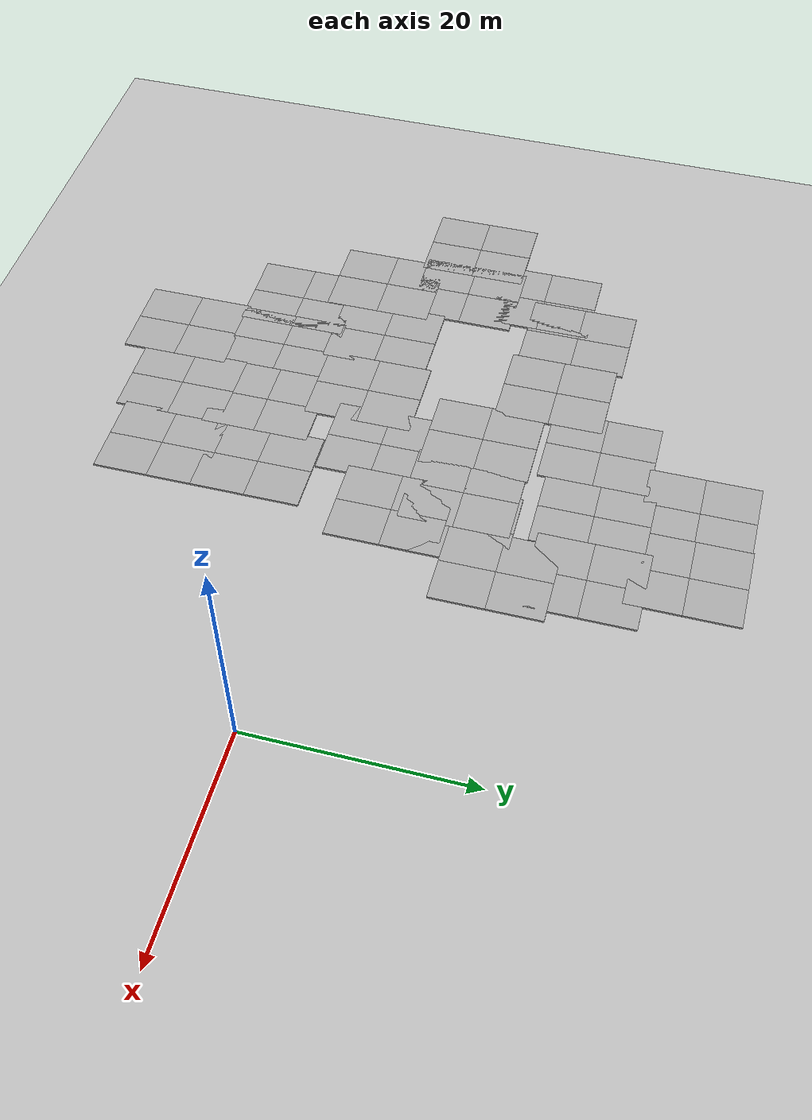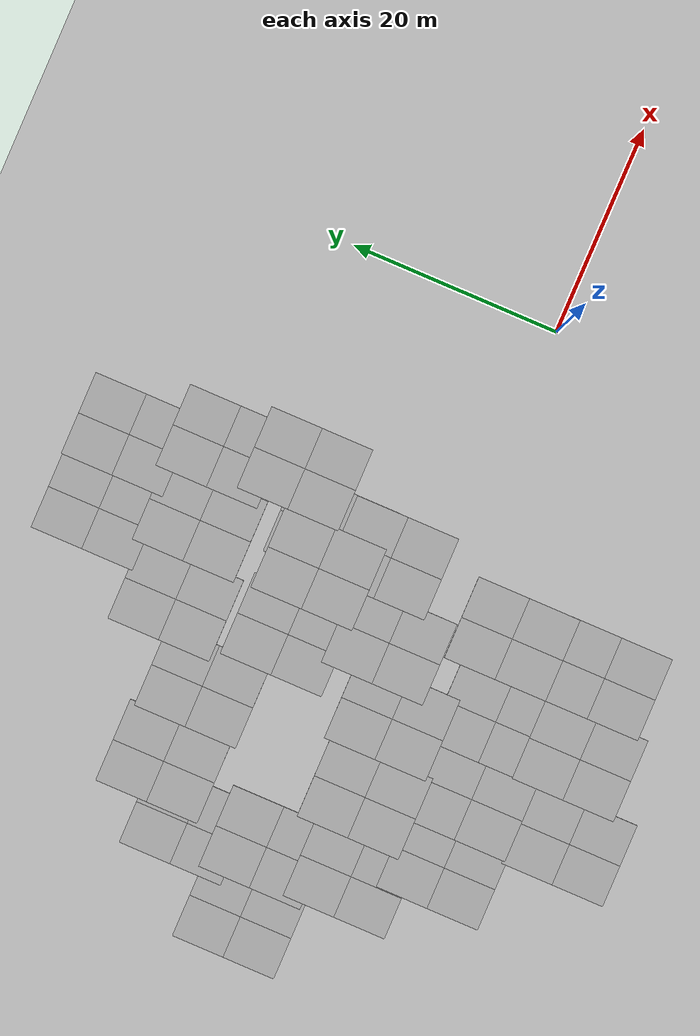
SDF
<sdf version="1.6">
 <world name="default">
  <model name="ground_plane">
   <static>1</static>
   <link name="link">
    <collision name="collision">
     <geometry><plane><normal>0 0 1</normal><size>100 100</size></plane></geometry>
     <surface><friction><ode><mu>100</mu><mu2>50</mu2></ode></friction></surface>
    </collision>
    <visual name="visual">
     <cast_shadows>0</cast_shadows>
     <geometry><plane><normal>0 0 1</normal><size>100 100</size></plane></geometry>
     <material>
      <script><uri>file://media/materials/scripts/gazebo.material</uri><name>Gazebo/Grey</name></script>
     </material>
    </visual>
   </link>
  </model>
  <model name="mud_box_clone_8_clone_12">
   <static>1</static>
   <link name="link">
    <collision name="collision"><geometry><box><size>8 10 0.2</size></box></geometry></collision>
    <visual name="visual_1">
     <pose>-2 2.5 0 0 -0 0</pose>
     <cast_shadows>0</cast_shadows>
     <geometry><box><size>4 5 0.2</size></box></geometry>
     <material>
      <script>
       <uri>model://mud_box/materials/scripts</uri>
       <uri>model://mud_box/materials/textures</uri>
       <name>vrc/mud</name>
      </script>
     </material>
    </visual>
    <visual name="visual_2">
     <pose>2 2.5 0 0 -0 0</pose>
     <cast_shadows>0</cast_shadows>
     <geometry><box><size>4 5 0.2</size></box></geometry>
     <material>
      <script>
       <uri>model://mud_box/materials/scripts</uri>
       <uri>model://mud_box/materials/textures</uri>
       <name>vrc/mud</name>
      </script>
     </material>
    </visual>
    <visual name="visual_3">
     <pose>2 -2.5 0 0 -0 0</pose>
     <cast_shadows>0</cast_shadows>
     <geometry><box><size>4 5 0.2</size></box></geometry>
     <material>
      <script>
       <uri>model://mud_box/materials/scripts</uri>
       <uri>model://mud_box/materials/textures</uri>
       <name>vrc/mud</name>
      </script>
     </material>
    </visual>
    <visual name="visual_4">
     <pose>-2 -2.5 0 0 -0 0</pose>
     <cast_shadows>0</cast_shadows>
     <geometry><box><size>4 5 0.2</size></box></geometry>
     <material>
      <script>
       <uri>model://mud_box/materials/scripts</uri>
       <uri>model://mud_box/materials/textures</uri>
       <name>vrc/mud</name>
      </script>
     </material>
    </visual>
   </link>
   <pose>-20.3945 16.0961 0 0 -0 0</pose>
  </model>
  <model name="mud_box_clone_8_clone_14">
   <static>1</static>
   <link name="link">
    <collision name="collision"><geometry><box><size>8 10 0.2</size></box></geometry></collision>
    <visual name="visual_1">
     <pose>-2 2.5 0 0 -0 0</pose>
     <cast_shadows>0</cast_shadows>
     <geometry><box><size>4 5 0.2</size></box></geometry>
     <material>
      <script>
       <uri>model://mud_box/materials/scripts</uri>
       <uri>model://mud_box/materials/textures</uri>
       <name>vrc/mud</name>
      </script>
     </material>
    </visual>
    <visual name="visual_2">
     <pose>2 2.5 0 0 -0 0</pose>
     <cast_shadows>0</cast_shadows>
     <geometry><box><size>4 5 0.2</size></box></geometry>
     <material>
      <script>
       <uri>model://mud_box/materials/scripts</uri>
       <uri>model://mud_box/materials/textures</uri>
       <name>vrc/mud</name>
      </script>
     </material>
    </visual>
    <visual name="visual_3">
     <pose>2 -2.5 0 0 -0 0</pose>
     <cast_shadows>0</cast_shadows>
     <geometry><box><size>4 5 0.2</size></box></geometry>
     <material>
      <script>
       <uri>model://mud_box/materials/scripts</uri>
       <uri>model://mud_box/materials/textures</uri>
       <name>vrc/mud</name>
      </script>
     </material>
    </visual>
    <visual name="visual_4">
     <pose>-2 -2.5 0 0 -0 0</pose>
     <cast_shadows>0</cast_shadows>
     <geometry><box><size>4 5 0.2</size></box></geometry>
     <material>
      <script>
       <uri>model://mud_box/materials/scripts</uri>
       <uri>model://mud_box/materials/textures</uri>
       <name>vrc/mud</name>
      </script>
     </material>
    </visual>
   </link>
   <pose>-21.4448 23.678 0 0 -0 0</pose>
  </model>
  <model name="mud_box_clone_8_clone_15">
   <static>1</static>
   <link name="link">
    <collision name="collision"><geometry><box><size>8 10 0.2</size></box></geometry></collision>
    <visual name="visual_1">
     <pose>-2 2.5 0 0 -0 0</pose>
     <cast_shadows>0</cast_shadows>
     <geometry><box><size>4 5 0.2</size></box></geometry>
     <material>
      <script>
       <uri>model://mud_box/materials/scripts</uri>
       <uri>model://mud_box/materials/textures</uri>
       <name>vrc/mud</name>
      </script>
     </material>
    </visual>
    <visual name="visual_2">
     <pose>2 2.5 0 0 -0 0</pose>
     <cast_shadows>0</cast_shadows>
     <geometry><box><size>4 5 0.2</size></box></geometry>
     <material>
      <script>
       <uri>model://mud_box/materials/scripts</uri>
       <uri>model://mud_box/materials/textures</uri>
       <name>vrc/mud</name>
      </script>
     </material>
    </visual>
    <visual name="visual_3">
     <pose>2 -2.5 0 0 -0 0</pose>
     <cast_shadows>0</cast_shadows>
     <geometry><box><size>4 5 0.2</size></box></geometry>
     <material>
      <script>
       <uri>model://mud_box/materials/scripts</uri>
       <uri>model://mud_box/materials/textures</uri>
       <name>vrc/mud</name>
      </script>
     </material>
    </visual>
    <visual name="visual_4">
     <pose>-2 -2.5 0 0 -0 0</pose>
     <cast_shadows>0</cast_shadows>
     <geometry><box><size>4 5 0.2</size></box></geometry>
     <material>
      <script>
       <uri>model://mud_box/materials/scripts</uri>
       <uri>model://mud_box/materials/textures</uri>
       <name>vrc/mud</name>
      </script>
     </material>
    </visual>
   </link>
   <pose>-23.842 31.9807 0 0 -0 0</pose>
  </model>
  <model name="mud_box_clone_8_clone_16">
   <static>1</static>
   <link name="link">
    <collision name="collision"><geometry><box><size>8 10 0.2</size></box></geometry></collision>
    <visual name="visual_1">
     <pose>-2 2.5 0 0 -0 0</pose>
     <cast_shadows>0</cast_shadows>
     <geometry><box><size>4 5 0.2</size></box></geometry>
     <material>
      <script>
       <uri>model://mud_box/materials/scripts</uri>
       <uri>model://mud_box/materials/textures</uri>
       <name>vrc/mud</name>
      </script>
     </material>
    </visual>
    <visual name="visual_2">
     <pose>2 2.5 0 0 -0 0</pose>
     <cast_shadows>0</cast_shadows>
     <geometry><box><size>4 5 0.2</size></box></geometry>
     <material>
      <script>
       <uri>model://mud_box/materials/scripts</uri>
       <uri>model://mud_box/materials/textures</uri>
       <name>vrc/mud</name>
      </script>
     </material>
    </visual>
    <visual name="visual_3">
     <pose>2 -2.5 0 0 -0 0</pose>
     <cast_shadows>0</cast_shadows>
     <geometry><box><size>4 5 0.2</size></box></geometry>
     <material>
      <script>
       <uri>model://mud_box/materials/scripts</uri>
       <uri>model://mud_box/materials/textures</uri>
       <name>vrc/mud</name>
      </script>
     </material>
    </visual>
    <visual name="visual_4">
     <pose>-2 -2.5 0 0 -0 0</pose>
     <cast_shadows>0</cast_shadows>
     <geometry><box><size>4 5 0.2</size></box></geometry>
     <material>
      <script>
       <uri>model://mud_box/materials/scripts</uri>
       <uri>model://mud_box/materials/textures</uri>
       <name>vrc/mud</name>
      </script>
     </material>
    </visual>
   </link>
   <pose>-28.4487 22.9932 0 0 -0 0</pose>
  </model>
  <model name="mud_box_clone_8_clone_17">
   <static>1</static>
   <link name="link">
    <collision name="collision"><geometry><box><size>8 10 0.2</size></box></geometry></collision>
    <visual name="visual_1">
     <pose>-2 2.5 0 0 -0 0</pose>
     <cast_shadows>0</cast_shadows>
     <geometry><box><size>4 5 0.2</size></box></geometry>
     <material>
      <script>
       <uri>model://mud_box/materials/scripts</uri>
       <uri>model://mud_box/materials/textures</uri>
       <name>vrc/mud</name>
      </script>
     </material>
    </visual>
    <visual name="visual_2">
     <pose>2 2.5 0 0 -0 0</pose>
     <cast_shadows>0</cast_shadows>
     <geometry><box><size>4 5 0.2</size></box></geometry>
     <material>
      <script>
       <uri>model://mud_box/materials/scripts</uri>
       <uri>model://mud_box/materials/textures</uri>
       <name>vrc/mud</name>
      </script>
     </material>
    </visual>
    <visual name="visual_3">
     <pose>2 -2.5 0 0 -0 0</pose>
     <cast_shadows>0</cast_shadows>
     <geometry><box><size>4 5 0.2</size></box></geometry>
     <material>
      <script>
       <uri>model://mud_box/materials/scripts</uri>
       <uri>model://mud_box/materials/textures</uri>
       <name>vrc/mud</name>
      </script>
     </material>
    </visual>
    <visual name="visual_4">
     <pose>-2 -2.5 0 0 -0 0</pose>
     <cast_shadows>0</cast_shadows>
     <geometry><box><size>4 5 0.2</size></box></geometry>
     <material>
      <script>
       <uri>model://mud_box/materials/scripts</uri>
       <uri>model://mud_box/materials/textures</uri>
       <name>vrc/mud</name>
      </script>
     </material>
    </visual>
   </link>
   <pose>-31.0589 31.8592 0 0 -0 0</pose>
  </model>
  <model name="mud_box_clone_8_clone_18">
   <static>1</static>
   <link name="link">
    <collision name="collision"><geometry><box><size>8 10 0.2</size></box></geometry></collision>
    <visual name="visual_1">
     <pose>-2 2.5 0 0 -0 0</pose>
     <cast_shadows>0</cast_shadows>
     <geometry><box><size>4 5 0.2</size></box></geometry>
     <material>
      <script>
       <uri>model://mud_box/materials/scripts</uri>
       <uri>model://mud_box/materials/textures</uri>
       <name>vrc/mud</name>
      </script>
     </material>
    </visual>
    <visual name="visual_2">
     <pose>2 2.5 0 0 -0 0</pose>
     <cast_shadows>0</cast_shadows>
     <geometry><box><size>4 5 0.2</size></box></geometry>
     <material>
      <script>
       <uri>model://mud_box/materials/scripts</uri>
       <uri>model://mud_box/materials/textures</uri>
       <name>vrc/mud</name>
      </script>
     </material>
    </visual>
    <visual name="visual_3">
     <pose>2 -2.5 0 0 -0 0</pose>
     <cast_shadows>0</cast_shadows>
     <geometry><box><size>4 5 0.2</size></box></geometry>
     <material>
      <script>
       <uri>model://mud_box/materials/scripts</uri>
       <uri>model://mud_box/materials/textures</uri>
       <name>vrc/mud</name>
      </script>
     </material>
    </visual>
    <visual name="visual_4">
     <pose>-2 -2.5 0 0 -0 0</pose>
     <cast_shadows>0</cast_shadows>
     <geometry><box><size>4 5 0.2</size></box></geometry>
     <material>
      <script>
       <uri>model://mud_box/materials/scripts</uri>
       <uri>model://mud_box/materials/textures</uri>
       <name>vrc/mud</name>
      </script>
     </material>
    </visual>
   </link>
   <pose>-35.9033 22.1992 0 0 -0 0</pose>
  </model>
  <model name="mud_box_clone_8_clone_19">
   <static>1</static>
   <link name="link">
    <collision name="collision"><geometry><box><size>8 10 0.2</size></box></geometry></collision>
    <visual name="visual_1">
     <pose>-2 2.5 0 0 -0 0</pose>
     <cast_shadows>0</cast_shadows>
     <geometry><box><size>4 5 0.2</size></box></geometry>
     <material>
      <script>
       <uri>model://mud_box/materials/scripts</uri>
       <uri>model://mud_box/materials/textures</uri>
       <name>vrc/mud</name>
      </script>
     </material>
    </visual>
    <visual name="visual_2">
     <pose>2 2.5 0 0 -0 0</pose>
     <cast_shadows>0</cast_shadows>
     <geometry><box><size>4 5 0.2</size></box></geometry>
     <material>
      <script>
       <uri>model://mud_box/materials/scripts</uri>
       <uri>model://mud_box/materials/textures</uri>
       <name>vrc/mud</name>
      </script>
     </material>
    </visual>
    <visual name="visual_3">
     <pose>2 -2.5 0 0 -0 0</pose>
     <cast_shadows>0</cast_shadows>
     <geometry><box><size>4 5 0.2</size></box></geometry>
     <material>
      <script>
       <uri>model://mud_box/materials/scripts</uri>
       <uri>model://mud_box/materials/textures</uri>
       <name>vrc/mud</name>
      </script>
     </material>
    </visual>
    <visual name="visual_4">
     <pose>-2 -2.5 0 0 -0 0</pose>
     <cast_shadows>0</cast_shadows>
     <geometry><box><size>4 5 0.2</size></box></geometry>
     <material>
      <script>
       <uri>model://mud_box/materials/scripts</uri>
       <uri>model://mud_box/materials/textures</uri>
       <name>vrc/mud</name>
      </script>
     </material>
    </visual>
   </link>
   <pose>-28.2141 11.3846 0 0 -0 0</pose>
  </model>
  <model name="mud_box_clone_8_clone_20">
   <static>1</static>
   <link name="link">
    <collision name="collision"><geometry><box><size>8 10 0.2</size></box></geometry></collision>
    <visual name="visual_1">
     <pose>-2 2.5 0 0 -0 0</pose>
     <cast_shadows>0</cast_shadows>
     <geometry><box><size>4 5 0.2</size></box></geometry>
     <material>
      <script>
       <uri>model://mud_box/materials/scripts</uri>
       <uri>model://mud_box/materials/textures</uri>
       <name>vrc/mud</name>
      </script>
     </material>
    </visual>
    <visual name="visual_2">
     <pose>2 2.5 0 0 -0 0</pose>
     <cast_shadows>0</cast_shadows>
     <geometry><box><size>4 5 0.2</size></box></geometry>
     <material>
      <script>
       <uri>model://mud_box/materials/scripts</uri>
       <uri>model://mud_box/materials/textures</uri>
       <name>vrc/mud</name>
      </script>
     </material>
    </visual>
    <visual name="visual_3">
     <pose>2 -2.5 0 0 -0 0</pose>
     <cast_shadows>0</cast_shadows>
     <geometry><box><size>4 5 0.2</size></box></geometry>
     <material>
      <script>
       <uri>model://mud_box/materials/scripts</uri>
       <uri>model://mud_box/materials/textures</uri>
       <name>vrc/mud</name>
      </script>
     </material>
    </visual>
    <visual name="visual_4">
     <pose>-2 -2.5 0 0 -0 0</pose>
     <cast_shadows>0</cast_shadows>
     <geometry><box><size>4 5 0.2</size></box></geometry>
     <material>
      <script>
       <uri>model://mud_box/materials/scripts</uri>
       <uri>model://mud_box/materials/textures</uri>
       <name>vrc/mud</name>
      </script>
     </material>
    </visual>
   </link>
   <pose>-24.7479 5.7356 0 0 -0 0</pose>
  </model>
  <model name="mud_box_clone_8_clone_21">
   <static>1</static>
   <link name="link">
    <collision name="collision"><geometry><box><size>8 10 0.2</size></box></geometry></collision>
    <visual name="visual_1">
     <pose>-2 2.5 0 0 -0 0</pose>
     <cast_shadows>0</cast_shadows>
     <geometry><box><size>4 5 0.2</size></box></geometry>
     <material>
      <script>
       <uri>model://mud_box/materials/scripts</uri>
       <uri>model://mud_box/materials/textures</uri>
       <name>vrc/mud</name>
      </script>
     </material>
    </visual>
    <visual name="visual_2">
     <pose>2 2.5 0 0 -0 0</pose>
     <cast_shadows>0</cast_shadows>
     <geometry><box><size>4 5 0.2</size></box></geometry>
     <material>
      <script>
       <uri>model://mud_box/materials/scripts</uri>
       <uri>model://mud_box/materials/textures</uri>
       <name>vrc/mud</name>
      </script>
     </material>
    </visual>
    <visual name="visual_3">
     <pose>2 -2.5 0 0 -0 0</pose>
     <cast_shadows>0</cast_shadows>
     <geometry><box><size>4 5 0.2</size></box></geometry>
     <material>
      <script>
       <uri>model://mud_box/materials/scripts</uri>
       <uri>model://mud_box/materials/textures</uri>
       <name>vrc/mud</name>
      </script>
     </material>
    </visual>
    <visual name="visual_4">
     <pose>-2 -2.5 0 0 -0 0</pose>
     <cast_shadows>0</cast_shadows>
     <geometry><box><size>4 5 0.2</size></box></geometry>
     <material>
      <script>
       <uri>model://mud_box/materials/scripts</uri>
       <uri>model://mud_box/materials/textures</uri>
       <name>vrc/mud</name>
      </script>
     </material>
    </visual>
   </link>
   <pose>-24.7207 11.6534 0 0 -0 0</pose>
  </model>
  <model name="mud_box_clone_8_clone_22">
   <static>1</static>
   <link name="link">
    <collision name="collision"><geometry><box><size>8 10 0.2</size></box></geometry></collision>
    <visual name="visual_1">
     <pose>-2 2.5 0 0 -0 0</pose>
     <cast_shadows>0</cast_shadows>
     <geometry><box><size>4 5 0.2</size></box></geometry>
     <material>
      <script>
       <uri>model://mud_box/materials/scripts</uri>
       <uri>model://mud_box/materials/textures</uri>
       <name>vrc/mud</name>
      </script>
     </material>
    </visual>
    <visual name="visual_2">
     <pose>2 2.5 0 0 -0 0</pose>
     <cast_shadows>0</cast_shadows>
     <geometry><box><size>4 5 0.2</size></box></geometry>
     <material>
      <script>
       <uri>model://mud_box/materials/scripts</uri>
       <uri>model://mud_box/materials/textures</uri>
       <name>vrc/mud</name>
      </script>
     </material>
    </visual>
    <visual name="visual_3">
     <pose>2 -2.5 0 0 -0 0</pose>
     <cast_shadows>0</cast_shadows>
     <geometry><box><size>4 5 0.2</size></box></geometry>
     <material>
      <script>
       <uri>model://mud_box/materials/scripts</uri>
       <uri>model://mud_box/materials/textures</uri>
       <name>vrc/mud</name>
      </script>
     </material>
    </visual>
    <visual name="visual_4">
     <pose>-2 -2.5 0 0 -0 0</pose>
     <cast_shadows>0</cast_shadows>
     <geometry><box><size>4 5 0.2</size></box></geometry>
     <material>
      <script>
       <uri>model://mud_box/materials/scripts</uri>
       <uri>model://mud_box/materials/textures</uri>
       <name>vrc/mud</name>
      </script>
     </material>
    </visual>
   </link>
   <pose>-31.9212 2.82333 0 0 -0 0</pose>
  </model>
  <model name="mud_box_clone_8_clone_23">
   <static>1</static>
   <link name="link">
    <collision name="collision"><geometry><box><size>8 10 0.2</size></box></geometry></collision>
    <visual name="visual_1">
     <pose>-2 2.5 0 0 -0 0</pose>
     <cast_shadows>0</cast_shadows>
     <geometry><box><size>4 5 0.2</size></box></geometry>
     <material>
      <script>
       <uri>model://mud_box/materials/scripts</uri>
       <uri>model://mud_box/materials/textures</uri>
       <name>vrc/mud</name>
      </script>
     </material>
    </visual>
    <visual name="visual_2">
     <pose>2 2.5 0 0 -0 0</pose>
     <cast_shadows>0</cast_shadows>
     <geometry><box><size>4 5 0.2</size></box></geometry>
     <material>
      <script>
       <uri>model://mud_box/materials/scripts</uri>
       <uri>model://mud_box/materials/textures</uri>
       <name>vrc/mud</name>
      </script>
     </material>
    </visual>
    <visual name="visual_3">
     <pose>2 -2.5 0 0 -0 0</pose>
     <cast_shadows>0</cast_shadows>
     <geometry><box><size>4 5 0.2</size></box></geometry>
     <material>
      <script>
       <uri>model://mud_box/materials/scripts</uri>
       <uri>model://mud_box/materials/textures</uri>
       <name>vrc/mud</name>
      </script>
     </material>
    </visual>
    <visual name="visual_4">
     <pose>-2 -2.5 0 0 -0 0</pose>
     <cast_shadows>0</cast_shadows>
     <geometry><box><size>4 5 0.2</size></box></geometry>
     <material>
      <script>
       <uri>model://mud_box/materials/scripts</uri>
       <uri>model://mud_box/materials/textures</uri>
       <name>vrc/mud</name>
      </script>
     </material>
    </visual>
   </link>
   <pose>-34.8202 11.5647 0 0 -0 0</pose>
  </model>
  <model name="mud_box_clone_8_clone_24">
   <static>1</static>
   <link name="link">
    <collision name="collision"><geometry><box><size>8 10 0.2</size></box></geometry></collision>
    <visual name="visual_1">
     <pose>-2 2.5 0 0 -0 0</pose>
     <cast_shadows>0</cast_shadows>
     <geometry><box><size>4 5 0.2</size></box></geometry>
     <material>
      <script>
       <uri>model://mud_box/materials/scripts</uri>
       <uri>model://mud_box/materials/textures</uri>
       <name>vrc/mud</name>
      </script>
     </material>
    </visual>
    <visual name="visual_2">
     <pose>2 2.5 0 0 -0 0</pose>
     <cast_shadows>0</cast_shadows>
     <geometry><box><size>4 5 0.2</size></box></geometry>
     <material>
      <script>
       <uri>model://mud_box/materials/scripts</uri>
       <uri>model://mud_box/materials/textures</uri>
       <name>vrc/mud</name>
      </script>
     </material>
    </visual>
    <visual name="visual_3">
     <pose>2 -2.5 0 0 -0 0</pose>
     <cast_shadows>0</cast_shadows>
     <geometry><box><size>4 5 0.2</size></box></geometry>
     <material>
      <script>
       <uri>model://mud_box/materials/scripts</uri>
       <uri>model://mud_box/materials/textures</uri>
       <name>vrc/mud</name>
      </script>
     </material>
    </visual>
    <visual name="visual_4">
     <pose>-2 -2.5 0 0 -0 0</pose>
     <cast_shadows>0</cast_shadows>
     <geometry><box><size>4 5 0.2</size></box></geometry>
     <material>
      <script>
       <uri>model://mud_box/materials/scripts</uri>
       <uri>model://mud_box/materials/textures</uri>
       <name>vrc/mud</name>
      </script>
     </material>
    </visual>
   </link>
   <pose>-42.2097 16.8755 0 0 -0 0</pose>
  </model>
  <model name="mud_box_clone_8_clone_25">
   <static>1</static>
   <link name="link">
    <collision name="collision"><geometry><box><size>8 10 0.2</size></box></geometry></collision>
    <visual name="visual_1">
     <pose>-2 2.5 0 0 -0 0</pose>
     <cast_shadows>0</cast_shadows>
     <geometry><box><size>4 5 0.2</size></box></geometry>
     <material>
      <script>
       <uri>model://mud_box/materials/scripts</uri>
       <uri>model://mud_box/materials/textures</uri>
       <name>vrc/mud</name>
      </script>
     </material>
    </visual>
    <visual name="visual_2">
     <pose>2 2.5 0 0 -0 0</pose>
     <cast_shadows>0</cast_shadows>
     <geometry><box><size>4 5 0.2</size></box></geometry>
     <material>
      <script>
       <uri>model://mud_box/materials/scripts</uri>
       <uri>model://mud_box/materials/textures</uri>
       <name>vrc/mud</name>
      </script>
     </material>
    </visual>
    <visual name="visual_3">
     <pose>2 -2.5 0 0 -0 0</pose>
     <cast_shadows>0</cast_shadows>
     <geometry><box><size>4 5 0.2</size></box></geometry>
     <material>
      <script>
       <uri>model://mud_box/materials/scripts</uri>
       <uri>model://mud_box/materials/textures</uri>
       <name>vrc/mud</name>
      </script>
     </material>
    </visual>
    <visual name="visual_4">
     <pose>-2 -2.5 0 0 -0 0</pose>
     <cast_shadows>0</cast_shadows>
     <geometry><box><size>4 5 0.2</size></box></geometry>
     <material>
      <script>
       <uri>model://mud_box/materials/scripts</uri>
       <uri>model://mud_box/materials/textures</uri>
       <name>vrc/mud</name>
      </script>
     </material>
    </visual>
   </link>
   <pose>-38.1401 -0.14474 0 0 -0 0</pose>
  </model>
  <model name="mud_box_clone_8_clone_26">
   <static>1</static>
   <link name="link">
    <collision name="collision"><geometry><box><size>8 10 0.2</size></box></geometry></collision>
    <visual name="visual_1">
     <pose>-2 2.5 0 0 -0 0</pose>
     <cast_shadows>0</cast_shadows>
     <geometry><box><size>4 5 0.2</size></box></geometry>
     <material>
      <script>
       <uri>model://mud_box/materials/scripts</uri>
       <uri>model://mud_box/materials/textures</uri>
       <name>vrc/mud</name>
      </script>
     </material>
    </visual>
    <visual name="visual_2">
     <pose>2 2.5 0 0 -0 0</pose>
     <cast_shadows>0</cast_shadows>
     <geometry><box><size>4 5 0.2</size></box></geometry>
     <material>
      <script>
       <uri>model://mud_box/materials/scripts</uri>
       <uri>model://mud_box/materials/textures</uri>
       <name>vrc/mud</name>
      </script>
     </material>
    </visual>
    <visual name="visual_3">
     <pose>2 -2.5 0 0 -0 0</pose>
     <cast_shadows>0</cast_shadows>
     <geometry><box><size>4 5 0.2</size></box></geometry>
     <material>
      <script>
       <uri>model://mud_box/materials/scripts</uri>
       <uri>model://mud_box/materials/textures</uri>
       <name>vrc/mud</name>
      </script>
     </material>
    </visual>
    <visual name="visual_4">
     <pose>-2 -2.5 0 0 -0 0</pose>
     <cast_shadows>0</cast_shadows>
     <geometry><box><size>4 5 0.2</size></box></geometry>
     <material>
      <script>
       <uri>model://mud_box/materials/scripts</uri>
       <uri>model://mud_box/materials/textures</uri>
       <name>vrc/mud</name>
      </script>
     </material>
    </visual>
   </link>
   <pose>-45.6462 -0.680603 0 0 -0 0</pose>
  </model>
  <model name="mud_box_clone_8_clone_27">
   <static>1</static>
   <link name="link">
    <collision name="collision"><geometry><box><size>8 10 0.2</size></box></geometry></collision>
    <visual name="visual_1">
     <pose>-2 2.5 0 0 -0 0</pose>
     <cast_shadows>0</cast_shadows>
     <geometry><box><size>4 5 0.2</size></box></geometry>
     <material>
      <script>
       <uri>model://mud_box/materials/scripts</uri>
       <uri>model://mud_box/materials/textures</uri>
       <name>vrc/mud</name>
      </script>
     </material>
    </visual>
    <visual name="visual_2">
     <pose>2 2.5 0 0 -0 0</pose>
     <cast_shadows>0</cast_shadows>
     <geometry><box><size>4 5 0.2</size></box></geometry>
     <material>
      <script>
       <uri>model://mud_box/materials/scripts</uri>
       <uri>model://mud_box/materials/textures</uri>
       <name>vrc/mud</name>
      </script>
     </material>
    </visual>
    <visual name="visual_3">
     <pose>2 -2.5 0 0 -0 0</pose>
     <cast_shadows>0</cast_shadows>
     <geometry><box><size>4 5 0.2</size></box></geometry>
     <material>
      <script>
       <uri>model://mud_box/materials/scripts</uri>
       <uri>model://mud_box/materials/textures</uri>
       <name>vrc/mud</name>
      </script>
     </material>
    </visual>
    <visual name="visual_4">
     <pose>-2 -2.5 0 0 -0 0</pose>
     <cast_shadows>0</cast_shadows>
     <geometry><box><size>4 5 0.2</size></box></geometry>
     <material>
      <script>
       <uri>model://mud_box/materials/scripts</uri>
       <uri>model://mud_box/materials/textures</uri>
       <name>vrc/mud</name>
      </script>
     </material>
    </visual>
   </link>
   <pose>-27.1629 -7.28738 0 0 -0 0</pose>
  </model>
  <model name="mud_box_clone_8_clone_28">
   <static>1</static>
   <link name="link">
    <collision name="collision"><geometry><box><size>8 10 0.2</size></box></geometry></collision>
    <visual name="visual_1">
     <pose>-2 2.5 0 0 -0 0</pose>
     <cast_shadows>0</cast_shadows>
     <geometry><box><size>4 5 0.2</size></box></geometry>
     <material>
      <script>
       <uri>model://mud_box/materials/scripts</uri>
       <uri>model://mud_box/materials/textures</uri>
       <name>vrc/mud</name>
      </script>
     </material>
    </visual>
    <visual name="visual_2">
     <pose>2 2.5 0 0 -0 0</pose>
     <cast_shadows>0</cast_shadows>
     <geometry><box><size>4 5 0.2</size></box></geometry>
     <material>
      <script>
       <uri>model://mud_box/materials/scripts</uri>
       <uri>model://mud_box/materials/textures</uri>
       <name>vrc/mud</name>
      </script>
     </material>
    </visual>
    <visual name="visual_3">
     <pose>2 -2.5 0 0 -0 0</pose>
     <cast_shadows>0</cast_shadows>
     <geometry><box><size>4 5 0.2</size></box></geometry>
     <material>
      <script>
       <uri>model://mud_box/materials/scripts</uri>
       <uri>model://mud_box/materials/textures</uri>
       <name>vrc/mud</name>
      </script>
     </material>
    </visual>
    <visual name="visual_4">
     <pose>-2 -2.5 0 0 -0 0</pose>
     <cast_shadows>0</cast_shadows>
     <geometry><box><size>4 5 0.2</size></box></geometry>
     <material>
      <script>
       <uri>model://mud_box/materials/scripts</uri>
       <uri>model://mud_box/materials/textures</uri>
       <name>vrc/mud</name>
      </script>
     </material>
    </visual>
   </link>
   <pose>-27.1493 -16.3916 0 0 -0 0</pose>
  </model>
  <model name="mud_box_clone_8_clone_29">
   <static>1</static>
   <link name="link">
    <collision name="collision"><geometry><box><size>8 10 0.2</size></box></geometry></collision>
    <visual name="visual_1">
     <pose>-2 2.5 0 0 -0 0</pose>
     <cast_shadows>0</cast_shadows>
     <geometry><box><size>4 5 0.2</size></box></geometry>
     <material>
      <script>
       <uri>model://mud_box/materials/scripts</uri>
       <uri>model://mud_box/materials/textures</uri>
       <name>vrc/mud</name>
      </script>
     </material>
    </visual>
    <visual name="visual_2">
     <pose>2 2.5 0 0 -0 0</pose>
     <cast_shadows>0</cast_shadows>
     <geometry><box><size>4 5 0.2</size></box></geometry>
     <material>
      <script>
       <uri>model://mud_box/materials/scripts</uri>
       <uri>model://mud_box/materials/textures</uri>
       <name>vrc/mud</name>
      </script>
     </material>
    </visual>
    <visual name="visual_3">
     <pose>2 -2.5 0 0 -0 0</pose>
     <cast_shadows>0</cast_shadows>
     <geometry><box><size>4 5 0.2</size></box></geometry>
     <material>
      <script>
       <uri>model://mud_box/materials/scripts</uri>
       <uri>model://mud_box/materials/textures</uri>
       <name>vrc/mud</name>
      </script>
     </material>
    </visual>
    <visual name="visual_4">
     <pose>-2 -2.5 0 0 -0 0</pose>
     <cast_shadows>0</cast_shadows>
     <geometry><box><size>4 5 0.2</size></box></geometry>
     <material>
      <script>
       <uri>model://mud_box/materials/scripts</uri>
       <uri>model://mud_box/materials/textures</uri>
       <name>vrc/mud</name>
      </script>
     </material>
    </visual>
   </link>
   <pose>-34.7922 -17.2665 0 0 -0 0</pose>
  </model>
  <model name="mud_box_clone_8_clone_30">
   <static>1</static>
   <link name="link">
    <collision name="collision"><geometry><box><size>8 10 0.2</size></box></geometry></collision>
    <visual name="visual_1">
     <pose>-2 2.5 0 0 -0 0</pose>
     <cast_shadows>0</cast_shadows>
     <geometry><box><size>4 5 0.2</size></box></geometry>
     <material>
      <script>
       <uri>model://mud_box/materials/scripts</uri>
       <uri>model://mud_box/materials/textures</uri>
       <name>vrc/mud</name>
      </script>
     </material>
    </visual>
    <visual name="visual_2">
     <pose>2 2.5 0 0 -0 0</pose>
     <cast_shadows>0</cast_shadows>
     <geometry><box><size>4 5 0.2</size></box></geometry>
     <material>
      <script>
       <uri>model://mud_box/materials/scripts</uri>
       <uri>model://mud_box/materials/textures</uri>
       <name>vrc/mud</name>
      </script>
     </material>
    </visual>
    <visual name="visual_3">
     <pose>2 -2.5 0 0 -0 0</pose>
     <cast_shadows>0</cast_shadows>
     <geometry><box><size>4 5 0.2</size></box></geometry>
     <material>
      <script>
       <uri>model://mud_box/materials/scripts</uri>
       <uri>model://mud_box/materials/textures</uri>
       <name>vrc/mud</name>
      </script>
     </material>
    </visual>
    <visual name="visual_4">
     <pose>-2 -2.5 0 0 -0 0</pose>
     <cast_shadows>0</cast_shadows>
     <geometry><box><size>4 5 0.2</size></box></geometry>
     <material>
      <script>
       <uri>model://mud_box/materials/scripts</uri>
       <uri>model://mud_box/materials/textures</uri>
       <name>vrc/mud</name>
      </script>
     </material>
    </visual>
   </link>
   <pose>-34.6791 -8.88382 0 0 -0 0</pose>
  </model>
  <model name="mud_box_clone_8_clone_31">
   <static>1</static>
   <link name="link">
    <collision name="collision"><geometry><box><size>8 10 0.2</size></box></geometry></collision>
    <visual name="visual_1">
     <pose>-2 2.5 0 0 -0 0</pose>
     <cast_shadows>0</cast_shadows>
     <geometry><box><size>4 5 0.2</size></box></geometry>
     <material>
      <script>
       <uri>model://mud_box/materials/scripts</uri>
       <uri>model://mud_box/materials/textures</uri>
       <name>vrc/mud</name>
      </script>
     </material>
    </visual>
    <visual name="visual_2">
     <pose>2 2.5 0 0 -0 0</pose>
     <cast_shadows>0</cast_shadows>
     <geometry><box><size>4 5 0.2</size></box></geometry>
     <material>
      <script>
       <uri>model://mud_box/materials/scripts</uri>
       <uri>model://mud_box/materials/textures</uri>
       <name>vrc/mud</name>
      </script>
     </material>
    </visual>
    <visual name="visual_3">
     <pose>2 -2.5 0 0 -0 0</pose>
     <cast_shadows>0</cast_shadows>
     <geometry><box><size>4 5 0.2</size></box></geometry>
     <material>
      <script>
       <uri>model://mud_box/materials/scripts</uri>
       <uri>model://mud_box/materials/textures</uri>
       <name>vrc/mud</name>
      </script>
     </material>
    </visual>
    <visual name="visual_4">
     <pose>-2 -2.5 0 0 -0 0</pose>
     <cast_shadows>0</cast_shadows>
     <geometry><box><size>4 5 0.2</size></box></geometry>
     <material>
      <script>
       <uri>model://mud_box/materials/scripts</uri>
       <uri>model://mud_box/materials/textures</uri>
       <name>vrc/mud</name>
      </script>
     </material>
    </visual>
   </link>
   <pose>-41.9988 -9.64542 0 0 -0 0</pose>
  </model>
  <model name="mud_box_clone_8_clone_32">
   <static>1</static>
   <link name="link">
    <collision name="collision"><geometry><box><size>8 10 0.2</size></box></geometry></collision>
    <visual name="visual_1">
     <pose>-2 2.5 0 0 -0 0</pose>
     <cast_shadows>0</cast_shadows>
     <geometry><box><size>4 5 0.2</size></box></geometry>
     <material>
      <script>
       <uri>model://mud_box/materials/scripts</uri>
       <uri>model://mud_box/materials/textures</uri>
       <name>vrc/mud</name>
      </script>
     </material>
    </visual>
    <visual name="visual_2">
     <pose>2 2.5 0 0 -0 0</pose>
     <cast_shadows>0</cast_shadows>
     <geometry><box><size>4 5 0.2</size></box></geometry>
     <material>
      <script>
       <uri>model://mud_box/materials/scripts</uri>
       <uri>model://mud_box/materials/textures</uri>
       <name>vrc/mud</name>
      </script>
     </material>
    </visual>
    <visual name="visual_3">
     <pose>2 -2.5 0 0 -0 0</pose>
     <cast_shadows>0</cast_shadows>
     <geometry><box><size>4 5 0.2</size></box></geometry>
     <material>
      <script>
       <uri>model://mud_box/materials/scripts</uri>
       <uri>model://mud_box/materials/textures</uri>
       <name>vrc/mud</name>
      </script>
     </material>
    </visual>
    <visual name="visual_4">
     <pose>-2 -2.5 0 0 -0 0</pose>
     <cast_shadows>0</cast_shadows>
     <geometry><box><size>4 5 0.2</size></box></geometry>
     <material>
      <script>
       <uri>model://mud_box/materials/scripts</uri>
       <uri>model://mud_box/materials/textures</uri>
       <name>vrc/mud</name>
      </script>
     </material>
    </visual>
   </link>
   <pose>-42.2437 -19.3988 0 0 -0 0</pose>
  </model>
  <model name="mud_box_clone_8_clone_33">
   <static>1</static>
   <link name="link">
    <collision name="collision"><geometry><box><size>8 10 0.2</size></box></geometry></collision>
    <visual name="visual_1">
     <pose>-2 2.5 0 0 -0 0</pose>
     <cast_shadows>0</cast_shadows>
     <geometry><box><size>4 5 0.2</size></box></geometry>
     <material>
      <script>
       <uri>model://mud_box/materials/scripts</uri>
       <uri>model://mud_box/materials/textures</uri>
       <name>vrc/mud</name>
      </script>
     </material>
    </visual>
    <visual name="visual_2">
     <pose>2 2.5 0 0 -0 0</pose>
     <cast_shadows>0</cast_shadows>
     <geometry><box><size>4 5 0.2</size></box></geometry>
     <material>
      <script>
       <uri>model://mud_box/materials/scripts</uri>
       <uri>model://mud_box/materials/textures</uri>
       <name>vrc/mud</name>
      </script>
     </material>
    </visual>
    <visual name="visual_3">
     <pose>2 -2.5 0 0 -0 0</pose>
     <cast_shadows>0</cast_shadows>
     <geometry><box><size>4 5 0.2</size></box></geometry>
     <material>
      <script>
       <uri>model://mud_box/materials/scripts</uri>
       <uri>model://mud_box/materials/textures</uri>
       <name>vrc/mud</name>
      </script>
     </material>
    </visual>
    <visual name="visual_4">
     <pose>-2 -2.5 0 0 -0 0</pose>
     <cast_shadows>0</cast_shadows>
     <geometry><box><size>4 5 0.2</size></box></geometry>
     <material>
      <script>
       <uri>model://mud_box/materials/scripts</uri>
       <uri>model://mud_box/materials/textures</uri>
       <name>vrc/mud</name>
      </script>
     </material>
    </visual>
   </link>
   <pose>-48.6853 -9.81101 0 0 -0 0</pose>
  </model>
  <model name="mud_box_clone_8_clone_34">
   <static>1</static>
   <link name="link">
    <collision name="collision"><geometry><box><size>8 10 0.2</size></box></geometry></collision>
    <visual name="visual_1">
     <pose>-2 2.5 0 0 -0 0</pose>
     <cast_shadows>0</cast_shadows>
     <geometry><box><size>4 5 0.2</size></box></geometry>
     <material>
      <script>
       <uri>model://mud_box/materials/scripts</uri>
       <uri>model://mud_box/materials/textures</uri>
       <name>vrc/mud</name>
      </script>
     </material>
    </visual>
    <visual name="visual_2">
     <pose>2 2.5 0 0 -0 0</pose>
     <cast_shadows>0</cast_shadows>
     <geometry><box><size>4 5 0.2</size></box></geometry>
     <material>
      <script>
       <uri>model://mud_box/materials/scripts</uri>
       <uri>model://mud_box/materials/textures</uri>
       <name>vrc/mud</name>
      </script>
     </material>
    </visual>
    <visual name="visual_3">
     <pose>2 -2.5 0 0 -0 0</pose>
     <cast_shadows>0</cast_shadows>
     <geometry><box><size>4 5 0.2</size></box></geometry>
     <material>
      <script>
       <uri>model://mud_box/materials/scripts</uri>
       <uri>model://mud_box/materials/textures</uri>
       <name>vrc/mud</name>
      </script>
     </material>
    </visual>
    <visual name="visual_4">
     <pose>-2 -2.5 0 0 -0 0</pose>
     <cast_shadows>0</cast_shadows>
     <geometry><box><size>4 5 0.2</size></box></geometry>
     <material>
      <script>
       <uri>model://mud_box/materials/scripts</uri>
       <uri>model://mud_box/materials/textures</uri>
       <name>vrc/mud</name>
      </script>
     </material>
    </visual>
   </link>
   <pose>-49.8413 17.4041 0 0 -0 0</pose>
  </model>
  <model name="mud_box_clone_8_clone_35">
   <static>1</static>
   <link name="link">
    <collision name="collision"><geometry><box><size>8 10 0.2</size></box></geometry></collision>
    <visual name="visual_1">
     <pose>-2 2.5 0 0 -0 0</pose>
     <cast_shadows>0</cast_shadows>
     <geometry><box><size>4 5 0.2</size></box></geometry>
     <material>
      <script>
       <uri>model://mud_box/materials/scripts</uri>
       <uri>model://mud_box/materials/textures</uri>
       <name>vrc/mud</name>
      </script>
     </material>
    </visual>
    <visual name="visual_2">
     <pose>2 2.5 0 0 -0 0</pose>
     <cast_shadows>0</cast_shadows>
     <geometry><box><size>4 5 0.2</size></box></geometry>
     <material>
      <script>
       <uri>model://mud_box/materials/scripts</uri>
       <uri>model://mud_box/materials/textures</uri>
       <name>vrc/mud</name>
      </script>
     </material>
    </visual>
    <visual name="visual_3">
     <pose>2 -2.5 0 0 -0 0</pose>
     <cast_shadows>0</cast_shadows>
     <geometry><box><size>4 5 0.2</size></box></geometry>
     <material>
      <script>
       <uri>model://mud_box/materials/scripts</uri>
       <uri>model://mud_box/materials/textures</uri>
       <name>vrc/mud</name>
      </script>
     </material>
    </visual>
    <visual name="visual_4">
     <pose>-2 -2.5 0 0 -0 0</pose>
     <cast_shadows>0</cast_shadows>
     <geometry><box><size>4 5 0.2</size></box></geometry>
     <material>
      <script>
       <uri>model://mud_box/materials/scripts</uri>
       <uri>model://mud_box/materials/textures</uri>
       <name>vrc/mud</name>
      </script>
     </material>
    </visual>
   </link>
   <pose>-52.7556 -2.3503 0 0 -0 0</pose>
  </model>
  <model name="mud_box_clone_8_clone_36">
   <static>1</static>
   <link name="link">
    <collision name="collision"><geometry><box><size>8 10 0.2</size></box></geometry></collision>
    <visual name="visual_1">
     <pose>-2 2.5 0 0 -0 0</pose>
     <cast_shadows>0</cast_shadows>
     <geometry><box><size>4 5 0.2</size></box></geometry>
     <material>
      <script>
       <uri>model://mud_box/materials/scripts</uri>
       <uri>model://mud_box/materials/textures</uri>
       <name>vrc/mud</name>
      </script>
     </material>
    </visual>
    <visual name="visual_2">
     <pose>2 2.5 0 0 -0 0</pose>
     <cast_shadows>0</cast_shadows>
     <geometry><box><size>4 5 0.2</size></box></geometry>
     <material>
      <script>
       <uri>model://mud_box/materials/scripts</uri>
       <uri>model://mud_box/materials/textures</uri>
       <name>vrc/mud</name>
      </script>
     </material>
    </visual>
    <visual name="visual_3">
     <pose>2 -2.5 0 0 -0 0</pose>
     <cast_shadows>0</cast_shadows>
     <geometry><box><size>4 5 0.2</size></box></geometry>
     <material>
      <script>
       <uri>model://mud_box/materials/scripts</uri>
       <uri>model://mud_box/materials/textures</uri>
       <name>vrc/mud</name>
      </script>
     </material>
    </visual>
    <visual name="visual_4">
     <pose>-2 -2.5 0 0 -0 0</pose>
     <cast_shadows>0</cast_shadows>
     <geometry><box><size>4 5 0.2</size></box></geometry>
     <material>
      <script>
       <uri>model://mud_box/materials/scripts</uri>
       <uri>model://mud_box/materials/textures</uri>
       <name>vrc/mud</name>
      </script>
     </material>
    </visual>
   </link>
   <pose>-53.3296 5.74081 0 0 -0 0</pose>
  </model>
  <model name="mud_box_clone_8_clone_37">
   <static>1</static>
   <link name="link">
    <collision name="collision"><geometry><box><size>8 10 0.2</size></box></geometry></collision>
    <visual name="visual_1">
     <pose>-2 2.5 0 0 -0 0</pose>
     <cast_shadows>0</cast_shadows>
     <geometry><box><size>4 5 0.2</size></box></geometry>
     <material>
      <script>
       <uri>model://mud_box/materials/scripts</uri>
       <uri>model://mud_box/materials/textures</uri>
       <name>vrc/mud</name>
      </script>
     </material>
    </visual>
    <visual name="visual_2">
     <pose>2 2.5 0 0 -0 0</pose>
     <cast_shadows>0</cast_shadows>
     <geometry><box><size>4 5 0.2</size></box></geometry>
     <material>
      <script>
       <uri>model://mud_box/materials/scripts</uri>
       <uri>model://mud_box/materials/textures</uri>
       <name>vrc/mud</name>
      </script>
     </material>
    </visual>
    <visual name="visual_3">
     <pose>2 -2.5 0 0 -0 0</pose>
     <cast_shadows>0</cast_shadows>
     <geometry><box><size>4 5 0.2</size></box></geometry>
     <material>
      <script>
       <uri>model://mud_box/materials/scripts</uri>
       <uri>model://mud_box/materials/textures</uri>
       <name>vrc/mud</name>
      </script>
     </material>
    </visual>
    <visual name="visual_4">
     <pose>-2 -2.5 0 0 -0 0</pose>
     <cast_shadows>0</cast_shadows>
     <geometry><box><size>4 5 0.2</size></box></geometry>
     <material>
      <script>
       <uri>model://mud_box/materials/scripts</uri>
       <uri>model://mud_box/materials/textures</uri>
       <name>vrc/mud</name>
      </script>
     </material>
    </visual>
   </link>
   <pose>-54.1638 13.2233 0 0 -0 0</pose>
  </model>
  <model name="mud_box_clone_8_clone_38">
   <static>1</static>
   <link name="link">
    <collision name="collision"><geometry><box><size>8 10 0.2</size></box></geometry></collision>
    <visual name="visual_1">
     <pose>-2 2.5 0 0 -0 0</pose>
     <cast_shadows>0</cast_shadows>
     <geometry><box><size>4 5 0.2</size></box></geometry>
     <material>
      <script>
       <uri>model://mud_box/materials/scripts</uri>
       <uri>model://mud_box/materials/textures</uri>
       <name>vrc/mud</name>
      </script>
     </material>
    </visual>
    <visual name="visual_2">
     <pose>2 2.5 0 0 -0 0</pose>
     <cast_shadows>0</cast_shadows>
     <geometry><box><size>4 5 0.2</size></box></geometry>
     <material>
      <script>
       <uri>model://mud_box/materials/scripts</uri>
       <uri>model://mud_box/materials/textures</uri>
       <name>vrc/mud</name>
      </script>
     </material>
    </visual>
    <visual name="visual_3">
     <pose>2 -2.5 0 0 -0 0</pose>
     <cast_shadows>0</cast_shadows>
     <geometry><box><size>4 5 0.2</size></box></geometry>
     <material>
      <script>
       <uri>model://mud_box/materials/scripts</uri>
       <uri>model://mud_box/materials/textures</uri>
       <name>vrc/mud</name>
      </script>
     </material>
    </visual>
    <visual name="visual_4">
     <pose>-2 -2.5 0 0 -0 0</pose>
     <cast_shadows>0</cast_shadows>
     <geometry><box><size>4 5 0.2</size></box></geometry>
     <material>
      <script>
       <uri>model://mud_box/materials/scripts</uri>
       <uri>model://mud_box/materials/textures</uri>
       <name>vrc/mud</name>
      </script>
     </material>
    </visual>
   </link>
   <pose>-60.0562 5.44383 0 0 -0 0</pose>
  </model>
 </world>
</sdf>
